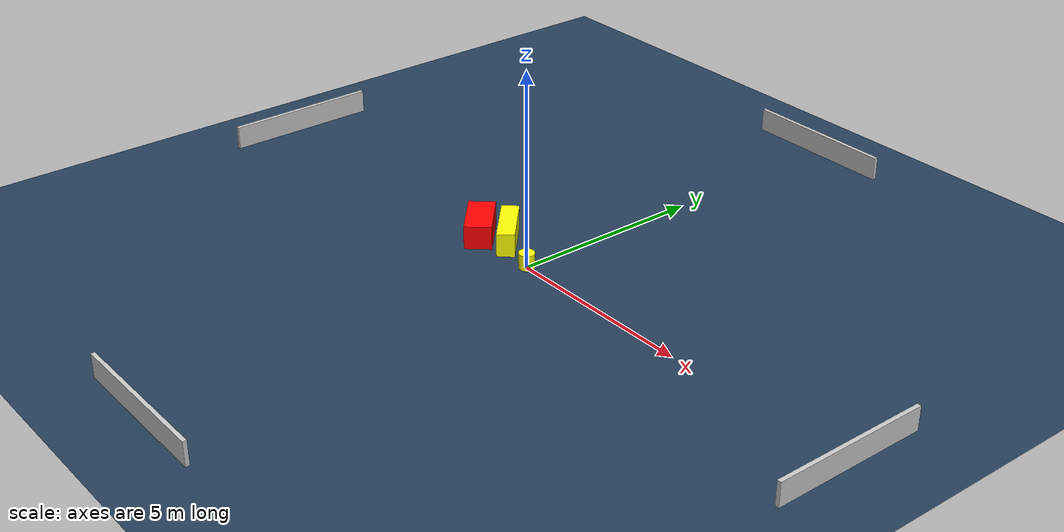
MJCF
<?xml version="1.0" ?>
<mujoco model="generated_environment">
  <option timestep="0.01" integrator="RK4" cone="elliptic"/>
  <default>
    <geom density="1"/>
  </default>
  <asset>
    <texture builtin="gradient" height="3072" name="skybox" rgb1="0.3 0.5 0.7" rgb2="0 0 0" type="skybox" width="512"/>
    <texture builtin="checker" height="300" name="groundplane" rgb1="0.2 0.3 0.4" rgb2="0.1 0.2 0.3" type="2d" width="300"/>
    <material name="groundplane" reflectance="0.2" texrepeat="5 5" texture="groundplane"/>
  </asset>
  <worldbody>
    <light dir="0 0 -1" directional="true" pos="0 0 1.5"/>
    <geom condim="3" friction="0.5 0.005 0.001" material="groundplane" name="floor" pos="0 0 0" size="0 0 0.05" type="plane"/>
    <body name="walls">
      <geom name="wall_1" condim="4" pos="-10.0 0.0 0.3" rgba="0.800000011920929 0.800000011920929 0.800000011920929 1.0" size="0.05 2.0 0.3" type="box"/>
      <geom name="wall_2" condim="4" pos="10.0 0.0 0.3" rgba="0.800000011920929 0.800000011920929 0.800000011920929 1.0" size="0.05 2.0 0.3" type="box"/>
      <geom name="wall_3" condim="4" pos="0.0 -10.0 0.3" rgba="0.800000011920929 0.800000011920929 0.800000011920929 1.0" size="2.0 0.05 0.3" type="box"/>
      <geom name="wall_4" condim="4" pos="0.0 10.0 0.3" rgba="0.800000011920929 0.800000011920929 0.800000011920929 1.0" size="2.0 0.05 0.3" type="box"/>
    </body>
    <body name="robot">
      <joint name="joint_x" type="slide" pos="0 0 0" axis="1 0 0"/>
      <joint name="joint_y" type="slide" pos="0 0 0" axis="0 1 0"/>
      <geom name="robot" type="cylinder" pos="0.0 0.0 0.2" size="0.2 0.2 0.0" mass="5.0" friction="1.0 0.005 0.0001" condim="4" rgba="1.0 1.0 0.0 1.0"/>
    </body>
    <body name="obstacle_1_movable">
      <geom name="obstacle_1_movable" condim="4" pos="-1.269350158795196 0.434103686682911 0.3" euler="0 0 137.53515850465575" friction="0.0 0.005 0.001" rgba="1.0 1.0 0.0 1.0" size="0.756529959118529 0.22194408523274634 0.3" type="box" mass="0.1"/>
      <joint type="free"/>
    </body>
    <body name="obstacle_2_static">
      <geom name="obstacle_2_static" condim="4" pos="-1.9268279852682026 0.08399302710577616 0.3" euler="0 0 228.17311819586195" friction="0.0 0.005 0.001" rgba="1.0 0.0 0.0 1.0" size="0.33970870593722163 0.6722654880542415 0.3" type="box"/>
    </body>
  </worldbody>
  <actuator>
    <motor name="actuator_x" joint="joint_x" gear="1" ctrlrange="-1 1"/>
    <motor name="actuator_y" joint="joint_y" gear="1" ctrlrange="-1 1"/>
  </actuator>
</mujoco>
